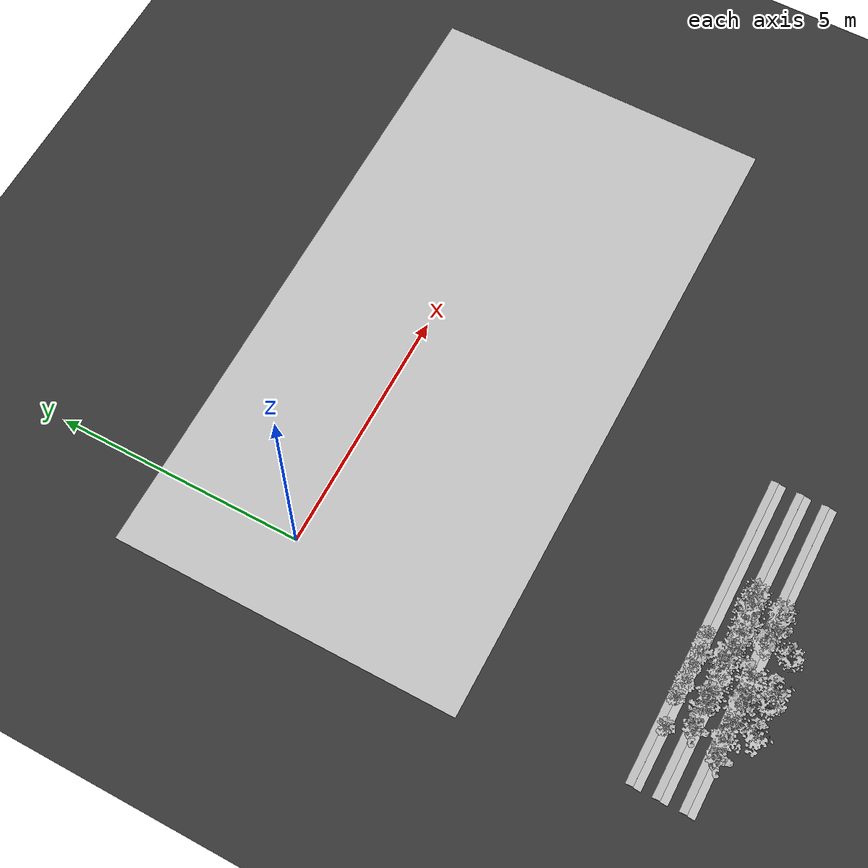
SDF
<sdf version="1.7">
 <world name="default">
  <model name="ground_plane">
   <static>1</static>
   <link name="link">
    <collision name="collision">
     <geometry><plane><normal>0 0 1</normal><size>100 100</size></plane></geometry>
     <surface>
      <contact><collide_bitmask>65535</collide_bitmask></contact>
      <friction><ode><mu>100</mu><mu2>50</mu2></ode></friction>
     </surface>
    </collision>
    <visual name="visual">
     <cast_shadows>0</cast_shadows>
     <geometry><plane><normal>0 0 1</normal><size>100 100</size></plane></geometry>
     <material>
      <ambient>0.2 0.2 0.2 1.0</ambient>
      <diffuse>0.2 0.2 0.2 1.0</diffuse>
      <specular>0.2 0.2 0.2 1.0</specular>
      <emissive>0.2 0.2 0.2 1.0</emissive>
     </material>
    </visual>
   </link>
  </model>
  <model name="ground">
   <pose>5 -0.5 0.01  3.141592654 0 0</pose>
   <static>true</static>
   <link name="body">
    <visual name="visual">
     <cast_shadows>0</cast_shadows>
     <geometry>
      <mesh><uri>file:///home/ifcosta/catkin_ws/src/cnn_line/worlds/models/ground.obj</uri></mesh>
     </geometry>
    </visual>
   </link>
  </model>
  <model name="plt_20000">
   <pose>-0.000553 -7.3 0.0132 0.0 0.0 -1.0122</pose>
   <static>true</static>
   <link name="body">
    <visual name="visual">
     <geometry>
      <mesh><uri>file:///home/ifcosta/catkin_ws/src/cnn_line/worlds/models/plant20.obj</uri></mesh>
     </geometry>
    </visual>
   </link>
  </model>
  <model name="plt_20002">
   <pose>0.57 -7.24 0.0132 0.0 0.0 -1.0299</pose>
   <static>true</static>
   <link name="body">
    <visual name="visual">
     <geometry>
      <mesh><uri>file:///home/ifcosta/catkin_ws/src/cnn_line/worlds/models/plant20.obj</uri></mesh>
     </geometry>
    </visual>
   </link>
  </model>
  <model name="plt_20003">
   <pose>0.885 -7.27 0.0162 0.0 0.0 1.3435</pose>
   <static>true</static>
   <link name="body">
    <visual name="visual">
     <geometry>
      <mesh><uri>file:///home/ifcosta/catkin_ws/src/cnn_line/worlds/models/plant21.obj</uri></mesh>
     </geometry>
    </visual>
   </link>
  </model>
  <model name="plt_20004">
   <pose>1.21 -7.27 0.0178 0.0 0.0 0.6462</pose>
   <static>true</static>
   <link name="body">
    <visual name="visual">
     <geometry>
      <mesh><uri>file:///home/ifcosta/catkin_ws/src/cnn_line/worlds/models/plant20.obj</uri></mesh>
     </geometry>
    </visual>
   </link>
  </model>
  <model name="plt_20005">
   <pose>1.5 -7.27 0.0163 0.0 0.0 -1.5363</pose>
   <static>true</static>
   <link name="body">
    <visual name="visual">
     <geometry>
      <mesh><uri>file:///home/ifcosta/catkin_ws/src/cnn_line/worlds/models/plant22.obj</uri></mesh>
     </geometry>
    </visual>
   </link>
  </model>
  <model name="plt_20006">
   <pose>1.82 -7.26 0.0144 0.0 0.0 -0.27954</pose>
   <static>true</static>
   <link name="body">
    <visual name="visual">
     <geometry>
      <mesh><uri>file:///home/ifcosta/catkin_ws/src/cnn_line/worlds/models/plant20.obj</uri></mesh>
     </geometry>
    </visual>
   </link>
  </model>
  <model name="slope_1034">
   <pose>2.0 -7.25 -0.005 0.0 0.0 0.0</pose>
   <static>true</static>
   <link name="body">
    <visual name="visual">
     <geometry>
      <mesh><uri>file:///home/ifcosta/catkin_ws/src/cnn_line/worlds/models/slope.obj</uri></mesh>
     </geometry>
    </visual>
   </link>
  </model>
  <model name="slope_1134">
   <pose>2.0 -7.25 -0.005 0.0 0.0 3.1416</pose>
   <static>true</static>
   <link name="body">
    <visual name="visual">
     <geometry>
      <mesh><uri>file:///home/ifcosta/catkin_ws/src/cnn_line/worlds/models/slope.obj</uri></mesh>
     </geometry>
    </visual>
   </link>
  </model>
  <model name="plt_30104">
   <pose>0.583 -8.73 0.0131 0.0 0.0 0.89201</pose>
   <static>true</static>
   <link name="body">
    <visual name="visual">
     <geometry>
      <mesh><uri>file:///home/ifcosta/catkin_ws/src/cnn_line/worlds/models/plant36.obj</uri></mesh>
     </geometry>
    </visual>
   </link>
  </model>
  <model name="plt_30106">
   <pose>1.18 -8.73 0.0154 0.0 0.0 -0.22982</pose>
   <static>true</static>
   <link name="body">
    <visual name="visual">
     <geometry>
      <mesh><uri>file:///home/ifcosta/catkin_ws/src/cnn_line/worlds/models/plant35.obj</uri></mesh>
     </geometry>
    </visual>
   </link>
  </model>
  <model name="plt_30107">
   <pose>1.47 -8.74 0.0135 0.0 0.0 1.3942</pose>
   <static>true</static>
   <link name="body">
    <visual name="visual">
     <geometry>
      <mesh><uri>file:///home/ifcosta/catkin_ws/src/cnn_line/worlds/models/plant36.obj</uri></mesh>
     </geometry>
    </visual>
   </link>
  </model>
  <model name="plt_30109">
   <pose>2.14 -8.72 0.0145 0.0 0.0 0.54236</pose>
   <static>true</static>
   <link name="body">
    <visual name="visual">
     <geometry>
      <mesh><uri>file:///home/ifcosta/catkin_ws/src/cnn_line/worlds/models/plant35.obj</uri></mesh>
     </geometry>
    </visual>
   </link>
  </model>
  <model name="plt_30136">
   <pose>-0.0215 -8.29 0.0179 0.0 0.0 -0.95603</pose>
   <static>true</static>
   <link name="body">
    <visual name="visual">
     <geometry>
      <mesh><uri>file:///home/ifcosta/catkin_ws/src/cnn_line/worlds/models/plant34.obj</uri></mesh>
     </geometry>
    </visual>
   </link>
  </model>
  <model name="plt_30137">
   <pose>0.264 -8.27 0.0141 0.0 0.0 1.0171</pose>
   <static>true</static>
   <link name="body">
    <visual name="visual">
     <geometry>
      <mesh><uri>file:///home/ifcosta/catkin_ws/src/cnn_line/worlds/models/plant31.obj</uri></mesh>
     </geometry>
    </visual>
   </link>
  </model>
  <model name="plt_30138">
   <pose>0.559 -8.25 0.014 0.0 0.0 2.3147</pose>
   <static>true</static>
   <link name="body">
    <visual name="visual">
     <geometry>
      <mesh><uri>file:///home/ifcosta/catkin_ws/src/cnn_line/worlds/models/plant33.obj</uri></mesh>
     </geometry>
    </visual>
   </link>
  </model>
  <model name="plt_30139">
   <pose>0.912 -8.26 0.0127 0.0 0.0 -1.3014</pose>
   <static>true</static>
   <link name="body">
    <visual name="visual">
     <geometry>
      <mesh><uri>file:///home/ifcosta/catkin_ws/src/cnn_line/worlds/models/plant35.obj</uri></mesh>
     </geometry>
    </visual>
   </link>
  </model>
  <model name="plt_30140">
   <pose>1.18 -8.3 0.0153 0.0 0.0 -0.56456</pose>
   <static>true</static>
   <link name="body">
    <visual name="visual">
     <geometry>
      <mesh><uri>file:///home/ifcosta/catkin_ws/src/cnn_line/worlds/models/plant34.obj</uri></mesh>
     </geometry>
    </visual>
   </link>
  </model>
  <model name="plt_30141">
   <pose>1.49 -8.25 0.0152 0.0 0.0 1.0335</pose>
   <static>true</static>
   <link name="body">
    <visual name="visual">
     <geometry>
      <mesh><uri>file:///home/ifcosta/catkin_ws/src/cnn_line/worlds/models/plant30.obj</uri></mesh>
     </geometry>
    </visual>
   </link>
  </model>
  <model name="plt_30143">
   <pose>2.12 -8.2 0.0142 0.0 0.0 -0.33582</pose>
   <static>true</static>
   <link name="body">
    <visual name="visual">
     <geometry>
      <mesh><uri>file:///home/ifcosta/catkin_ws/src/cnn_line/worlds/models/plant32.obj</uri></mesh>
     </geometry>
    </visual>
   </link>
  </model>
  <model name="plt_30144">
   <pose>2.4 -8.24 0.0167 0.0 0.0 0.92767</pose>
   <static>true</static>
   <link name="body">
    <visual name="visual">
     <geometry>
      <mesh><uri>file:///home/ifcosta/catkin_ws/src/cnn_line/worlds/models/plant34.obj</uri></mesh>
     </geometry>
    </visual>
   </link>
  </model>
  <model name="plt_30145">
   <pose>2.73 -8.27 0.013 0.0 0.0 -1.4492</pose>
   <static>true</static>
   <link name="body">
    <visual name="visual">
     <geometry>
      <mesh><uri>file:///home/ifcosta/catkin_ws/src/cnn_line/worlds/models/plant32.obj</uri></mesh>
     </geometry>
    </visual>
   </link>
  </model>
  <model name="slope_1570">
   <pose>2.0 -8.25 -0.005 0.0 0.0 0.0</pose>
   <static>true</static>
   <link name="body">
    <visual name="visual">
     <geometry>
      <mesh><uri>file:///home/ifcosta/catkin_ws/src/cnn_line/worlds/models/slope.obj</uri></mesh>
     </geometry>
    </visual>
   </link>
  </model>
  <model name="slope_1670">
   <pose>2.0 -8.25 -0.005 0.0 0.0 3.1416</pose>
   <static>true</static>
   <link name="body">
    <visual name="visual">
     <geometry>
      <mesh><uri>file:///home/ifcosta/catkin_ws/src/cnn_line/worlds/models/slope.obj</uri></mesh>
     </geometry>
    </visual>
   </link>
  </model>
  <model name="plt_30171">
   <pose>0.268 -7.73 0.0156 0.0 0.0 -1.026</pose>
   <static>true</static>
   <link name="body">
    <visual name="visual">
     <geometry>
      <mesh><uri>file:///home/ifcosta/catkin_ws/src/cnn_line/worlds/models/plant34.obj</uri></mesh>
     </geometry>
    </visual>
   </link>
  </model>
  <model name="plt_30172">
   <pose>0.625 -7.75 0.0164 0.0 0.0 -1.9823</pose>
   <static>true</static>
   <link name="body">
    <visual name="visual">
     <geometry>
      <mesh><uri>file:///home/ifcosta/catkin_ws/src/cnn_line/worlds/models/plant33.obj</uri></mesh>
     </geometry>
    </visual>
   </link>
  </model>
  <model name="plt_30173">
   <pose>0.907 -7.77 0.0145 0.0 0.0 0.18021</pose>
   <static>true</static>
   <link name="body">
    <visual name="visual">
     <geometry>
      <mesh><uri>file:///home/ifcosta/catkin_ws/src/cnn_line/worlds/models/plant31.obj</uri></mesh>
     </geometry>
    </visual>
   </link>
  </model>
  <model name="plt_30174">
   <pose>1.24 -7.78 0.0161 0.0 0.0 0.58858</pose>
   <static>true</static>
   <link name="body">
    <visual name="visual">
     <geometry>
      <mesh><uri>file:///home/ifcosta/catkin_ws/src/cnn_line/worlds/models/plant35.obj</uri></mesh>
     </geometry>
    </visual>
   </link>
  </model>
  <model name="plt_30175">
   <pose>1.51 -7.69 0.0125 0.0 0.0 -1.9063</pose>
   <static>true</static>
   <link name="body">
    <visual name="visual">
     <geometry>
      <mesh><uri>file:///home/ifcosta/catkin_ws/src/cnn_line/worlds/models/plant36.obj</uri></mesh>
     </geometry>
    </visual>
   </link>
  </model>
  <model name="plt_30176">
   <pose>1.8 -7.77 0.0132 0.0 0.0 1.8543</pose>
   <static>true</static>
   <link name="body">
    <visual name="visual">
     <geometry>
      <mesh><uri>file:///home/ifcosta/catkin_ws/src/cnn_line/worlds/models/plant33.obj</uri></mesh>
     </geometry>
    </visual>
   </link>
  </model>
  <model name="plt_30177">
   <pose>2.15 -7.77 0.0153 0.0 0.0 2.1561</pose>
   <static>true</static>
   <link name="body">
    <visual name="visual">
     <geometry>
      <mesh><uri>file:///home/ifcosta/catkin_ws/src/cnn_line/worlds/models/plant35.obj</uri></mesh>
     </geometry>
    </visual>
   </link>
  </model>
  <model name="plt_30178">
   <pose>2.4 -7.78 0.0163 0.0 0.0 -0.45692</pose>
   <static>true</static>
   <link name="body">
    <visual name="visual">
     <geometry>
      <mesh><uri>file:///home/ifcosta/catkin_ws/src/cnn_line/worlds/models/plant32.obj</uri></mesh>
     </geometry>
    </visual>
   </link>
  </model>
  <model name="plt_30179">
   <pose>2.67 -7.72 0.0138 0.0 0.0 1.0533</pose>
   <static>true</static>
   <link name="body">
    <visual name="visual">
     <geometry>
      <mesh><uri>file:///home/ifcosta/catkin_ws/src/cnn_line/worlds/models/plant32.obj</uri></mesh>
     </geometry>
    </visual>
   </link>
  </model>
  <model name="plt_30180">
   <pose>2.92 -7.74 0.0149 0.0 0.0 0.72121</pose>
   <static>true</static>
   <link name="body">
    <visual name="visual">
     <geometry>
      <mesh><uri>file:///home/ifcosta/catkin_ws/src/cnn_line/worlds/models/plant35.obj</uri></mesh>
     </geometry>
    </visual>
   </link>
  </model>
  <model name="slope_1604">
   <pose>2.0 -7.75 -0.005 0.0 0.0 0.0</pose>
   <static>true</static>
   <link name="body">
    <visual name="visual">
     <geometry>
      <mesh><uri>file:///home/ifcosta/catkin_ws/src/cnn_line/worlds/models/slope.obj</uri></mesh>
     </geometry>
    </visual>
   </link>
  </model>
  <model name="slope_1704">
   <pose>2.0 -7.75 -0.005 0.0 0.0 3.1416</pose>
   <static>true</static>
   <link name="body">
    <visual name="visual">
     <geometry>
      <mesh><uri>file:///home/ifcosta/catkin_ws/src/cnn_line/worlds/models/slope.obj</uri></mesh>
     </geometry>
    </visual>
   </link>
  </model>
 </world>
</sdf>
